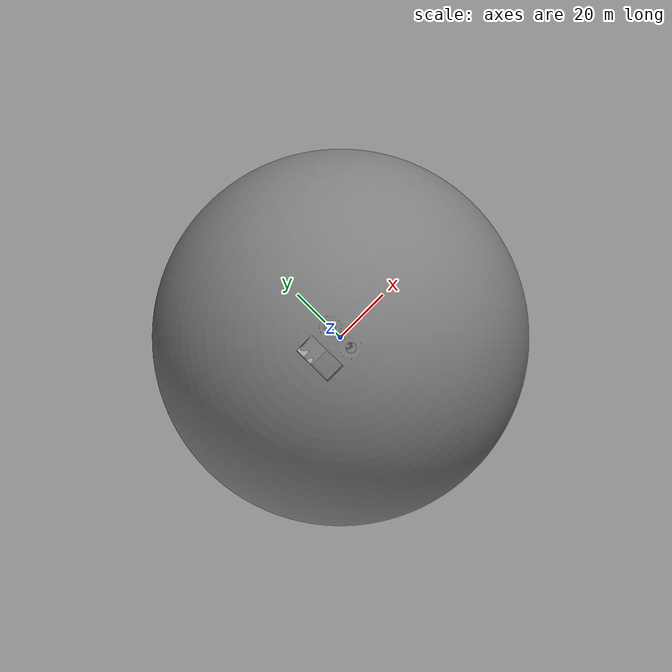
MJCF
<mujoco model="FabConvert.com_back_ring_holder">
  <default>
    <default class="visual">
      <geom group="2" type="mesh" contype="0" conaffinity="0"/>
    </default>
    <default class="collision">
      <geom group="3" type="mesh"/>
    </default>
  </default>
  <asset>
    <mesh file="FabConvert.com_servo_gear_x2.obj"/>
    <mesh file="FabConvert.com_servo_brackets_x4.obj"/>
    <mesh file="FabConvert.com_middle_wall_mount.obj"/>
    <mesh file="FabConvert.com_gear_2.obj"/>
    <mesh file="FabConvert.com_gear_1.obj"/>
    <mesh file="FabConvert.com_back_ring_holder.obj"/>
    <mesh file="FabConvert.com_back_cover_sphere.obj"/>
  </asset>
<worldbody>
  <body name="FabConvert.com_servo_gear_x2">
    <geom mesh="FabConvert.com_servo_gear_x2" class="visual"/>
    <geom mesh="FabConvert.com_servo_gear_x2" class="collision"/>
  </body>
  <body name="FabConvert.com_servo_brackets_x4">
    <geom mesh="FabConvert.com_servo_brackets_x4" class="visual"/>
    <geom mesh="FabConvert.com_servo_brackets_x4" class="collision"/>
  </body>
  <body name="FabConvert.com_middle_wall_mount">
    <geom mesh="FabConvert.com_middle_wall_mount" class="visual" axisangle="1 0 0 90" pos="0.1 0.2 0.3"/>
    <geom mesh="FabConvert.com_middle_wall_mount" class="collision" axisangle="1 0 0 90" pos="0.1 0.2 0.3"/>
  </body>
  <body name="FabConvert.com_gear_2">
    <geom mesh="FabConvert.com_gear_2" class="visual" axisangle="1 0 0 90" pos="-0.2 0.1 0.4"/>
    <geom mesh="FabConvert.com_gear_2" class="collision" axisangle="1 0 0 90" pos="-0.2 0.1 0.4"/>
  </body>
  <body name="FabConvert.com_gear_1" >
    <geom mesh="FabConvert.com_gear_1" class="visual" pos="0.3 0.2 0.1"/>
    <geom mesh="FabConvert.com_gear_1" class="collision" pos="0.3 0.2 0.1"/>
  </body>
  <body name="FabConvert.com_back_ring_holder" childclass="sub">
    <geom mesh="FabConvert.com_back_ring_holder" class="visual" axisangle="1 1 0 180" pos="-0.1 0.3 0.2"/>
    <geom mesh="FabConvert.com_back_ring_holder" class="collision" axisangle="1 1 0 180" pos="-0.1 0.3 0.2"/>
  </body>
  <body name="FabConvert.com_back_cover_sphere">
    <geom mesh="FabConvert.com_back_cover_sphere" class="visual" rgba="1 1 1 0.1" />
    <geom mesh="FabConvert.com_back_cover_sphere" class="main" />
  </body>
  <body name="FabConvert.com_back_cover_sphere2">
    <geom mesh="FabConvert.com_back_cover_sphere" class="visual" rgba="1 1 1 0.1" axisangle="1 0 0 180" pos="0.2 -0.1 0.3"/>
    <geom mesh="FabConvert.com_back_cover_sphere" class="collision" axisangle="1 0 0 180" pos="0.2 -0.1 0.3"/>
  </body>
</worldbody>
</mujoco>
